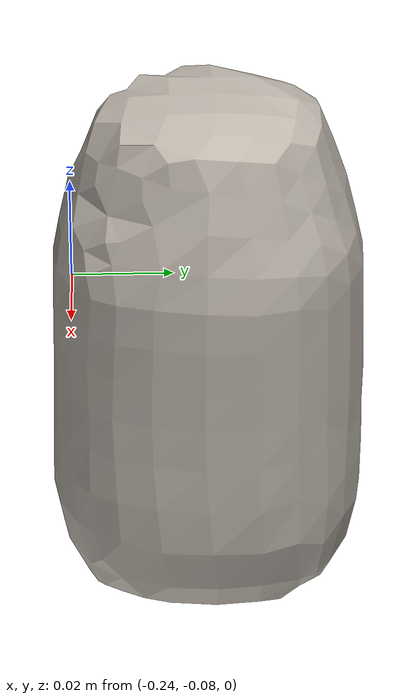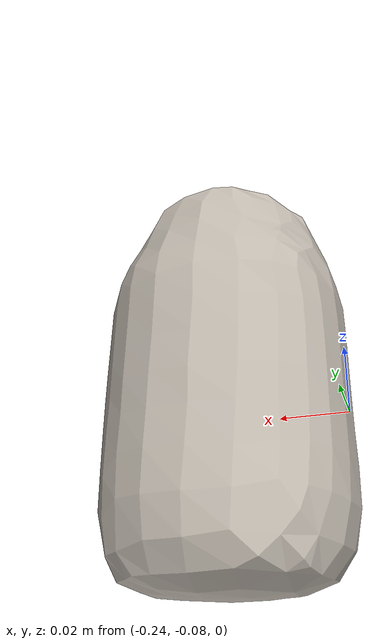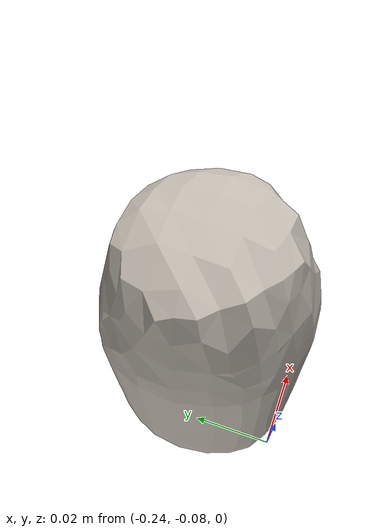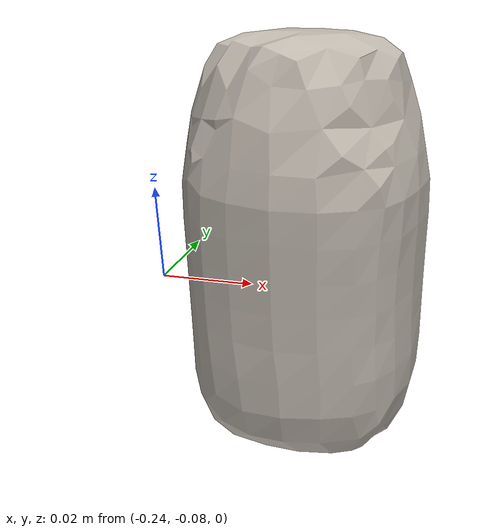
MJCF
<mujoco model="pillbottle_Pet_Dophilus_powder_M">
  <asset>
    <mesh file="meshes/pillbottle_Pet_Dophilus_powder_M.stl" name="pillbottle_mesh" scale="0.8232533065478084 0.8232533065478084 0.8232533065478084"/>
    <texture type="cube" file="/home/jbw/Projects/gc-reorientation/bin_env/assets/textures/ceramic.png" rgb1="1 1 1" name="tex-pillbottle"/>
    <material name="pillbottle" reflectance="0.5" texrepeat="3 3" texture="tex-pillbottle"/>
  </asset>
  <worldbody>
    <body>
      <body name="object">
        <geom pos="-0.21383319890019772 -0.05409170855358337 -0.0017797495763596316" quat="1 0 0 0" mesh="pillbottle_mesh" type="mesh" solref="0.02 1" density="0" friction="1.0 1.0 1.0" material="pillbottle" group="0" condim="4"/>
      </body>
      <site rgba="0 0 0 0" size="0.005" pos="0 0 -0.05" name="bottom_site"/>
      <site rgba="0 0 0 0" size="0.005" pos="0 0 0.03" name="top_site"/>
      <site rgba="0 0 0 0" size="0.005" pos="0.02 0.015 0" name="horizontal_radius_site"/>
    </body>
  </worldbody>
</mujoco>
